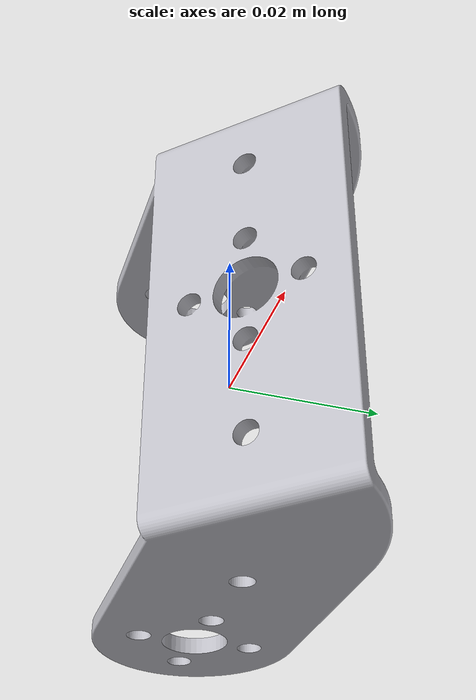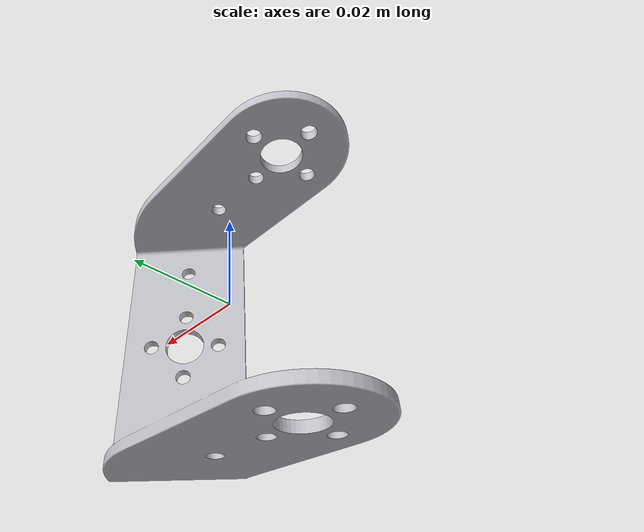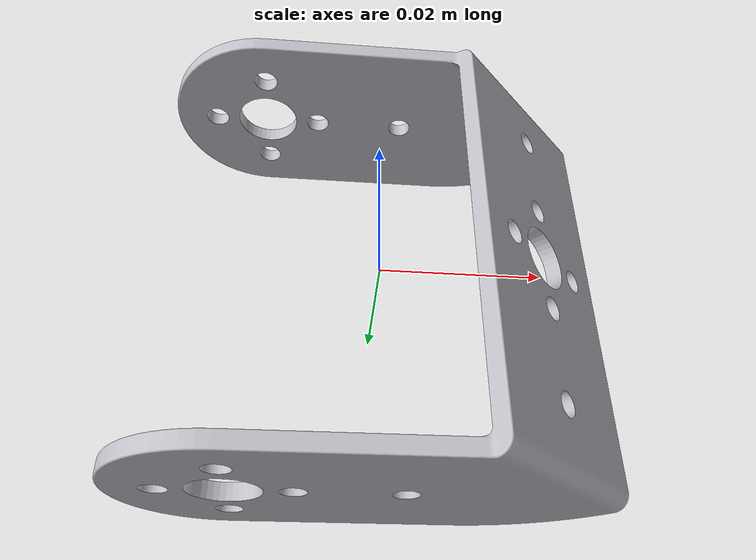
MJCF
<?xml version='1.0' encoding='utf-8'?>
<mujoco model="part_slantU">
  <compiler angle="radian" meshdir="." autolimits="true"/>
  <visual>
    <global offwidth="1024" offheight="1024"/>
    <headlight ambient="0.55 0.55 0.55" diffuse="0.6 0.6 0.6" specular="0.2 0.2 0.2"/>
  </visual>
  <default>
    <default class="visual"><geom type="mesh" contype="0" conaffinity="0" group="2" density="0"/></default>
    <default class="collision"><geom type="mesh" group="3"/></default>
  </default>
  <asset>
    <mesh name="slantU" file="斜U支架.STL" scale="0.001 0.001 0.001"/>
    <material name="bracket" rgba="0.75 0.75 0.78 1"/>
  </asset>
  <worldbody>
    <!-- source 斜U支架.STL: bbox min 0.000251 0.030581 0.035079 max 56.488583 26.341240 54.035080 mm, size 56.488332 26.310659 54.000001 mm -->
    <body name="slantU">
      <geom name="slantU_visual" mesh="slantU" class="visual" material="bracket" pos="-0.028244 -0.013186 -0.027035"/>
      <geom name="slantU_collision" mesh="slantU" class="collision" pos="-0.028244 -0.013186 -0.027035" density="2700"/>
    </body>
  </worldbody>
</mujoco>
